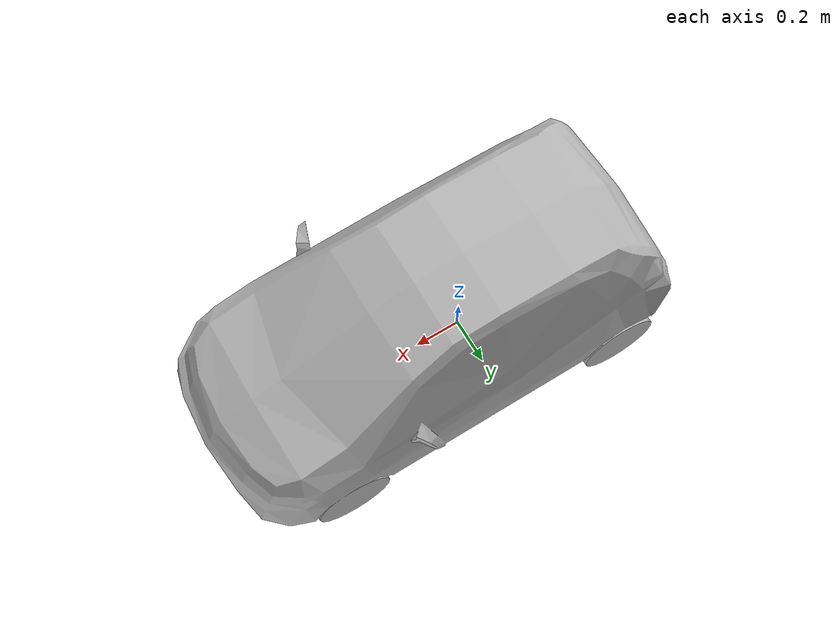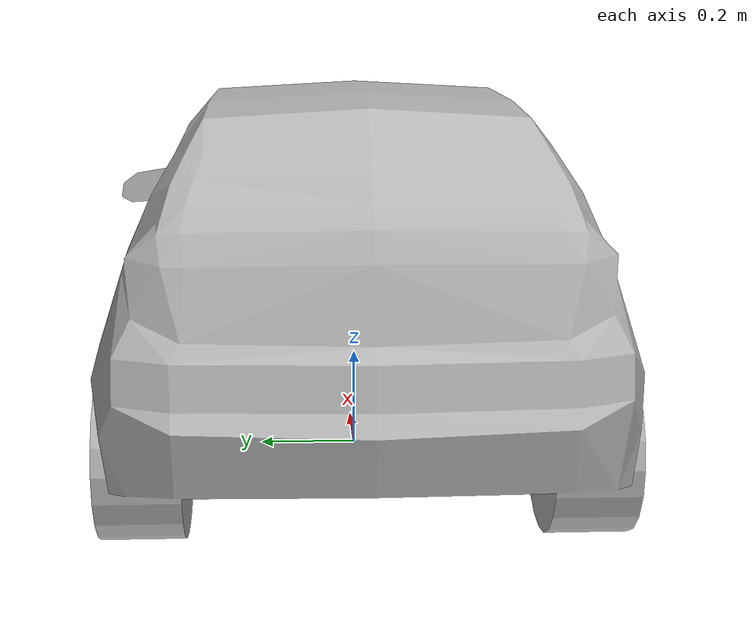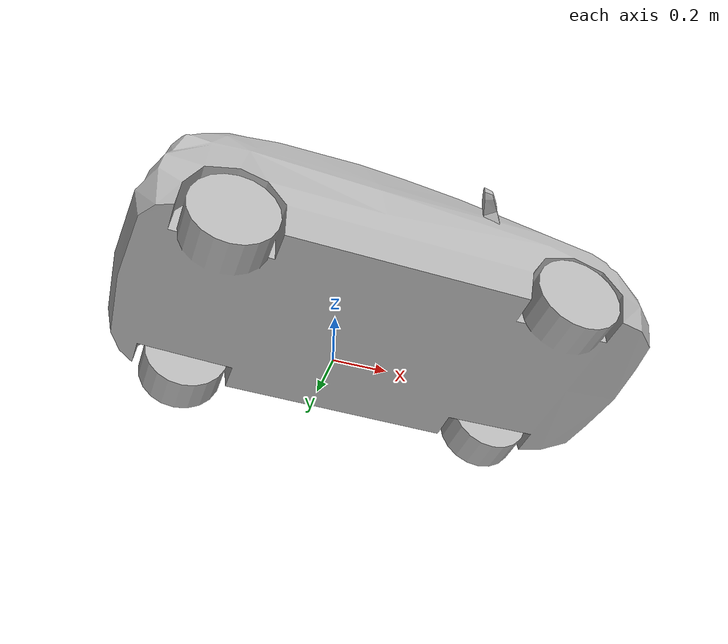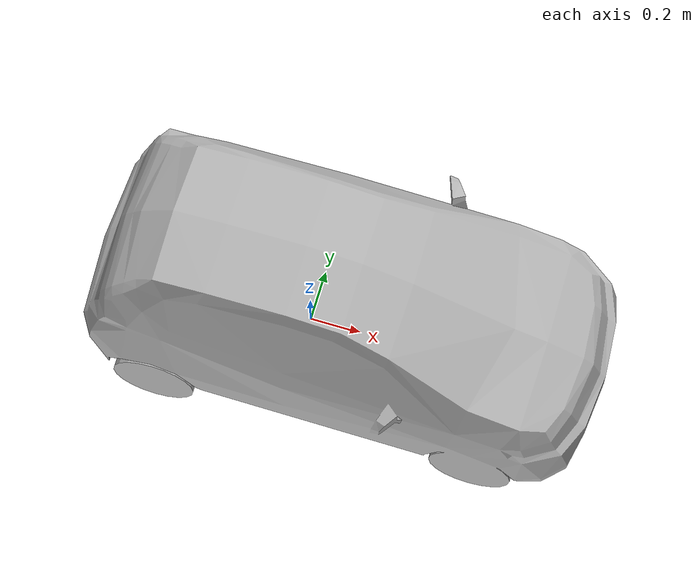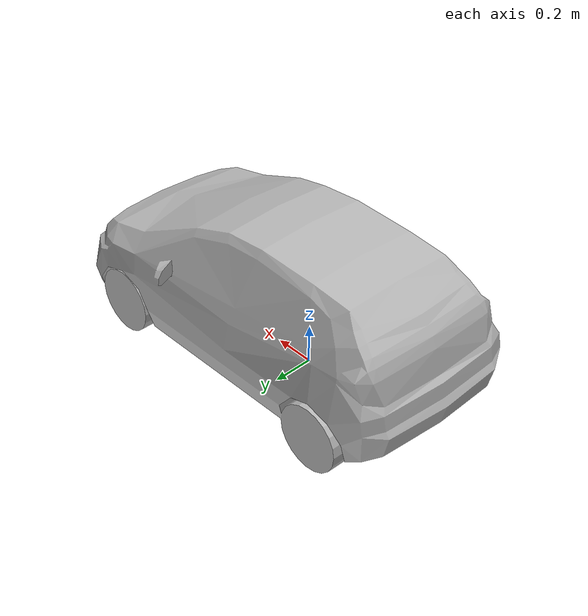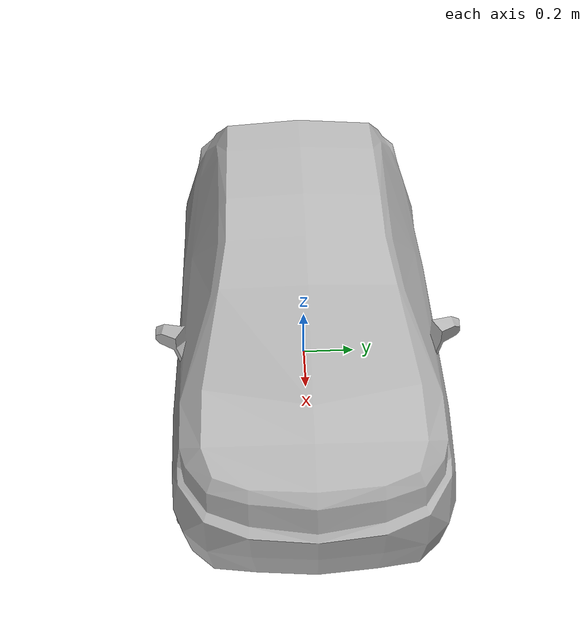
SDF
<?xml version="1.0" ?>
<sdf version="1.6">
  <model name="hatchback">
    <static>true</static>
    <link name="link">
      <collision name="collision">
        <pose>0.1718 0.0 0.3863 0 0 1.57079632679</pose>
        <geometry>
          <box>
            <size>1.0702 2.0006 0.7839</size>
          </box>
        </geometry>
      </collision>
      <visual name="visual">
        <pose>0 0 0 0 0 1.57079632679</pose>
        <geometry>
          <mesh>
            <scale>0.0127 0.0127 0.0127</scale>
            <uri>model://hatchback/meshes/hatchback.obj</uri>
          </mesh>
        </geometry>
      </visual>
    </link>
  </model>
</sdf>
